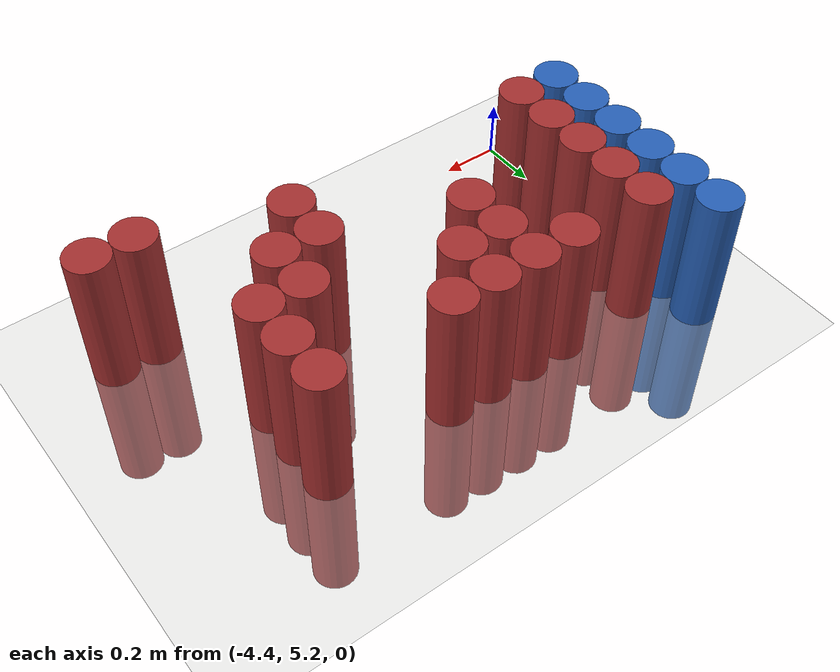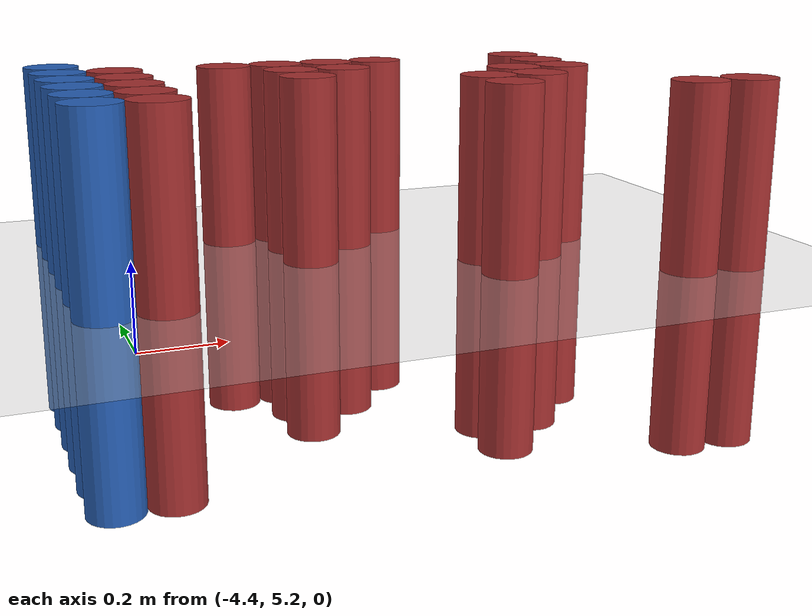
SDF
<sdf version="1.6">
 <world name="default">
  <model name="ground_plane">
   <static>1</static>
   <link name="link">
    <collision name="collision">
     <geometry><plane><normal>0 0 1</normal><size>100 100</size></plane></geometry>
     <surface><friction><ode><mu>100</mu><mu2>50</mu2></ode></friction></surface>
    </collision>
    <visual name="visual">
     <cast_shadows>0</cast_shadows>
     <geometry><plane><normal>0 0 1</normal><size>100 100</size></plane></geometry>
     <material>
      <script><uri>file://media/materials/scripts/gazebo.material</uri><name>Gazebo/Grey</name></script>
     </material>
    </visual>
   </link>
  </model>
  <model name="unit_cylinder_98">
   <static>1</static>
   <pose>-4.425000 5.475000 0.000000 0.000000 0.000000 0.000000</pose>
   <link name="link">
    <inertial>
     <mass>1</mass>
     <inertia><ixx>0.145833</ixx><ixy>0</ixy><ixz>0</ixz><iyy>0.145833</iyy><iyz>0</iyz><izz>0.125</izz></inertia>
    </inertial>
    <collision name="collision">
     <geometry><cylinder><radius>0.075000</radius><length>1</length></cylinder></geometry>
    </collision>
    <visual name="visual">
     <geometry><cylinder><radius>0.075000</radius><length>1</length></cylinder></geometry>
     <material>
      <ambient>0.152000 0.379000 0.720000 1</ambient>
      <diffuse>0.152000 0.379000 0.720000 1</diffuse>
     </material>
     <material>
      <script><name>Gazebo/Grey</name><uri>file://media/materials/scripts/gazebo.material</uri></script>
     </material>
    </visual>
   </link>
  </model>
  <model name="unit_cylinder_99">
   <static>1</static>
   <pose>-4.425000 5.625000 0.000000 0.000000 0.000000 0.000000</pose>
   <link name="link">
    <inertial>
     <mass>1</mass>
     <inertia><ixx>0.145833</ixx><ixy>0</ixy><ixz>0</ixz><iyy>0.145833</iyy><iyz>0</iyz><izz>0.125</izz></inertia>
    </inertial>
    <collision name="collision">
     <geometry><cylinder><radius>0.075000</radius><length>1</length></cylinder></geometry>
    </collision>
    <visual name="visual">
     <geometry><cylinder><radius>0.075000</radius><length>1</length></cylinder></geometry>
     <material>
      <ambient>0.152000 0.379000 0.720000 1</ambient>
      <diffuse>0.152000 0.379000 0.720000 1</diffuse>
     </material>
     <material>
      <script><name>Gazebo/Grey</name><uri>file://media/materials/scripts/gazebo.material</uri></script>
     </material>
    </visual>
   </link>
  </model>
  <model name="unit_cylinder_100">
   <static>1</static>
   <pose>-4.425000 5.775000 0.000000 0.000000 0.000000 0.000000</pose>
   <link name="link">
    <inertial>
     <mass>1</mass>
     <inertia><ixx>0.145833</ixx><ixy>0</ixy><ixz>0</ixz><iyy>0.145833</iyy><iyz>0</iyz><izz>0.125</izz></inertia>
    </inertial>
    <collision name="collision">
     <geometry><cylinder><radius>0.075000</radius><length>1</length></cylinder></geometry>
    </collision>
    <visual name="visual">
     <geometry><cylinder><radius>0.075000</radius><length>1</length></cylinder></geometry>
     <material>
      <ambient>0.152000 0.379000 0.720000 1</ambient>
      <diffuse>0.152000 0.379000 0.720000 1</diffuse>
     </material>
     <material>
      <script><name>Gazebo/Grey</name><uri>file://media/materials/scripts/gazebo.material</uri></script>
     </material>
    </visual>
   </link>
  </model>
  <model name="unit_cylinder_101">
   <static>1</static>
   <pose>-4.425000 5.925000 0.000000 0.000000 0.000000 0.000000</pose>
   <link name="link">
    <inertial>
     <mass>1</mass>
     <inertia><ixx>0.145833</ixx><ixy>0</ixy><ixz>0</ixz><iyy>0.145833</iyy><iyz>0</iyz><izz>0.125</izz></inertia>
    </inertial>
    <collision name="collision">
     <geometry><cylinder><radius>0.075000</radius><length>1</length></cylinder></geometry>
    </collision>
    <visual name="visual">
     <geometry><cylinder><radius>0.075000</radius><length>1</length></cylinder></geometry>
     <material>
      <ambient>0.152000 0.379000 0.720000 1</ambient>
      <diffuse>0.152000 0.379000 0.720000 1</diffuse>
     </material>
     <material>
      <script><name>Gazebo/Grey</name><uri>file://media/materials/scripts/gazebo.material</uri></script>
     </material>
    </visual>
   </link>
  </model>
  <model name="unit_cylinder_102">
   <static>1</static>
   <pose>-4.425000 6.075000 0.000000 0.000000 0.000000 0.000000</pose>
   <link name="link">
    <inertial>
     <mass>1</mass>
     <inertia><ixx>0.145833</ixx><ixy>0</ixy><ixz>0</ixz><iyy>0.145833</iyy><iyz>0</iyz><izz>0.125</izz></inertia>
    </inertial>
    <collision name="collision">
     <geometry><cylinder><radius>0.075000</radius><length>1</length></cylinder></geometry>
    </collision>
    <visual name="visual">
     <geometry><cylinder><radius>0.075000</radius><length>1</length></cylinder></geometry>
     <material>
      <ambient>0.152000 0.379000 0.720000 1</ambient>
      <diffuse>0.152000 0.379000 0.720000 1</diffuse>
     </material>
     <material>
      <script><name>Gazebo/Grey</name><uri>file://media/materials/scripts/gazebo.material</uri></script>
     </material>
    </visual>
   </link>
  </model>
  <model name="unit_cylinder_103">
   <static>1</static>
   <pose>-4.425000 6.225000 0.000000 0.000000 0.000000 0.000000</pose>
   <link name="link">
    <inertial>
     <mass>1</mass>
     <inertia><ixx>0.145833</ixx><ixy>0</ixy><ixz>0</ixz><iyy>0.145833</iyy><iyz>0</iyz><izz>0.125</izz></inertia>
    </inertial>
    <collision name="collision">
     <geometry><cylinder><radius>0.075000</radius><length>1</length></cylinder></geometry>
    </collision>
    <visual name="visual">
     <geometry><cylinder><radius>0.075000</radius><length>1</length></cylinder></geometry>
     <material>
      <ambient>0.152000 0.379000 0.720000 1</ambient>
      <diffuse>0.152000 0.379000 0.720000 1</diffuse>
     </material>
     <material>
      <script><name>Gazebo/Grey</name><uri>file://media/materials/scripts/gazebo.material</uri></script>
     </material>
    </visual>
   </link>
  </model>
  <model name="unit_cylinder_127">
   <static>1</static>
   <pose>-4.275000 5.475000 0.000000 0.000000 0.000000 0.000000</pose>
   <link name="link">
    <inertial>
     <mass>1</mass>
     <inertia><ixx>0.145833</ixx><ixy>0</ixy><ixz>0</ixz><iyy>0.145833</iyy><iyz>0</iyz><izz>0.125</izz></inertia>
    </inertial>
    <collision name="collision">
     <geometry><cylinder><radius>0.075000</radius><length>1</length></cylinder></geometry>
    </collision>
    <visual name="visual">
     <geometry><cylinder><radius>0.075000</radius><length>1</length></cylinder></geometry>
     <material>
      <ambient>0.648000 0.192000 0.192000 1</ambient>
      <diffuse>0.648000 0.192000 0.192000 1</diffuse>
     </material>
     <material>
      <script><name>Gazebo/Grey</name><uri>file://media/materials/scripts/gazebo.material</uri></script>
     </material>
    </visual>
   </link>
  </model>
  <model name="unit_cylinder_128">
   <static>1</static>
   <pose>-4.275000 5.625000 0.000000 0.000000 0.000000 0.000000</pose>
   <link name="link">
    <inertial>
     <mass>1</mass>
     <inertia><ixx>0.145833</ixx><ixy>0</ixy><ixz>0</ixz><iyy>0.145833</iyy><iyz>0</iyz><izz>0.125</izz></inertia>
    </inertial>
    <collision name="collision">
     <geometry><cylinder><radius>0.075000</radius><length>1</length></cylinder></geometry>
    </collision>
    <visual name="visual">
     <geometry><cylinder><radius>0.075000</radius><length>1</length></cylinder></geometry>
     <material>
      <ambient>0.648000 0.192000 0.192000 1</ambient>
      <diffuse>0.648000 0.192000 0.192000 1</diffuse>
     </material>
     <material>
      <script><name>Gazebo/Grey</name><uri>file://media/materials/scripts/gazebo.material</uri></script>
     </material>
    </visual>
   </link>
  </model>
  <model name="unit_cylinder_129">
   <static>1</static>
   <pose>-4.275000 5.775000 0.000000 0.000000 0.000000 0.000000</pose>
   <link name="link">
    <inertial>
     <mass>1</mass>
     <inertia><ixx>0.145833</ixx><ixy>0</ixy><ixz>0</ixz><iyy>0.145833</iyy><iyz>0</iyz><izz>0.125</izz></inertia>
    </inertial>
    <collision name="collision">
     <geometry><cylinder><radius>0.075000</radius><length>1</length></cylinder></geometry>
    </collision>
    <visual name="visual">
     <geometry><cylinder><radius>0.075000</radius><length>1</length></cylinder></geometry>
     <material>
      <ambient>0.648000 0.192000 0.192000 1</ambient>
      <diffuse>0.648000 0.192000 0.192000 1</diffuse>
     </material>
     <material>
      <script><name>Gazebo/Grey</name><uri>file://media/materials/scripts/gazebo.material</uri></script>
     </material>
    </visual>
   </link>
  </model>
  <model name="unit_cylinder_130">
   <static>1</static>
   <pose>-4.275000 5.925000 0.000000 0.000000 0.000000 0.000000</pose>
   <link name="link">
    <inertial>
     <mass>1</mass>
     <inertia><ixx>0.145833</ixx><ixy>0</ixy><ixz>0</ixz><iyy>0.145833</iyy><iyz>0</iyz><izz>0.125</izz></inertia>
    </inertial>
    <collision name="collision">
     <geometry><cylinder><radius>0.075000</radius><length>1</length></cylinder></geometry>
    </collision>
    <visual name="visual">
     <geometry><cylinder><radius>0.075000</radius><length>1</length></cylinder></geometry>
     <material>
      <ambient>0.648000 0.192000 0.192000 1</ambient>
      <diffuse>0.648000 0.192000 0.192000 1</diffuse>
     </material>
     <material>
      <script><name>Gazebo/Grey</name><uri>file://media/materials/scripts/gazebo.material</uri></script>
     </material>
    </visual>
   </link>
  </model>
  <model name="unit_cylinder_131">
   <static>1</static>
   <pose>-4.275000 6.075000 0.000000 0.000000 0.000000 0.000000</pose>
   <link name="link">
    <inertial>
     <mass>1</mass>
     <inertia><ixx>0.145833</ixx><ixy>0</ixy><ixz>0</ixz><iyy>0.145833</iyy><iyz>0</iyz><izz>0.125</izz></inertia>
    </inertial>
    <collision name="collision">
     <geometry><cylinder><radius>0.075000</radius><length>1</length></cylinder></geometry>
    </collision>
    <visual name="visual">
     <geometry><cylinder><radius>0.075000</radius><length>1</length></cylinder></geometry>
     <material>
      <ambient>0.648000 0.192000 0.192000 1</ambient>
      <diffuse>0.648000 0.192000 0.192000 1</diffuse>
     </material>
     <material>
      <script><name>Gazebo/Grey</name><uri>file://media/materials/scripts/gazebo.material</uri></script>
     </material>
    </visual>
   </link>
  </model>
  <model name="unit_cylinder_152">
   <static>1</static>
   <pose>-3.975000 6.075000 0.000000 0.000000 0.000000 0.000000</pose>
   <link name="link">
    <inertial>
     <mass>1</mass>
     <inertia><ixx>0.145833</ixx><ixy>0</ixy><ixz>0</ixz><iyy>0.145833</iyy><iyz>0</iyz><izz>0.125</izz></inertia>
    </inertial>
    <collision name="collision">
     <geometry><cylinder><radius>0.075000</radius><length>1</length></cylinder></geometry>
    </collision>
    <visual name="visual">
     <geometry><cylinder><radius>0.075000</radius><length>1</length></cylinder></geometry>
     <material>
      <ambient>0.648000 0.192000 0.192000 1</ambient>
      <diffuse>0.648000 0.192000 0.192000 1</diffuse>
     </material>
     <material>
      <script><name>Gazebo/Grey</name><uri>file://media/materials/scripts/gazebo.material</uri></script>
     </material>
    </visual>
   </link>
  </model>
  <model name="unit_cylinder_158">
   <static>1</static>
   <pose>-3.825000 5.775000 0.000000 0.000000 0.000000 0.000000</pose>
   <link name="link">
    <inertial>
     <mass>1</mass>
     <inertia><ixx>0.145833</ixx><ixy>0</ixy><ixz>0</ixz><iyy>0.145833</iyy><iyz>0</iyz><izz>0.125</izz></inertia>
    </inertial>
    <collision name="collision">
     <geometry><cylinder><radius>0.075000</radius><length>1</length></cylinder></geometry>
    </collision>
    <visual name="visual">
     <geometry><cylinder><radius>0.075000</radius><length>1</length></cylinder></geometry>
     <material>
      <ambient>0.648000 0.192000 0.192000 1</ambient>
      <diffuse>0.648000 0.192000 0.192000 1</diffuse>
     </material>
     <material>
      <script><name>Gazebo/Grey</name><uri>file://media/materials/scripts/gazebo.material</uri></script>
     </material>
    </visual>
   </link>
  </model>
  <model name="unit_cylinder_159">
   <static>1</static>
   <pose>-3.825000 5.925000 0.000000 0.000000 0.000000 0.000000</pose>
   <link name="link">
    <inertial>
     <mass>1</mass>
     <inertia><ixx>0.145833</ixx><ixy>0</ixy><ixz>0</ixz><iyy>0.145833</iyy><iyz>0</iyz><izz>0.125</izz></inertia>
    </inertial>
    <collision name="collision">
     <geometry><cylinder><radius>0.075000</radius><length>1</length></cylinder></geometry>
    </collision>
    <visual name="visual">
     <geometry><cylinder><radius>0.075000</radius><length>1</length></cylinder></geometry>
     <material>
      <ambient>0.648000 0.192000 0.192000 1</ambient>
      <diffuse>0.648000 0.192000 0.192000 1</diffuse>
     </material>
     <material>
      <script><name>Gazebo/Grey</name><uri>file://media/materials/scripts/gazebo.material</uri></script>
     </material>
    </visual>
   </link>
  </model>
  <model name="unit_cylinder_160">
   <static>1</static>
   <pose>-3.825000 6.075000 0.000000 0.000000 0.000000 0.000000</pose>
   <link name="link">
    <inertial>
     <mass>1</mass>
     <inertia><ixx>0.145833</ixx><ixy>0</ixy><ixz>0</ixz><iyy>0.145833</iyy><iyz>0</iyz><izz>0.125</izz></inertia>
    </inertial>
    <collision name="collision">
     <geometry><cylinder><radius>0.075000</radius><length>1</length></cylinder></geometry>
    </collision>
    <visual name="visual">
     <geometry><cylinder><radius>0.075000</radius><length>1</length></cylinder></geometry>
     <material>
      <ambient>0.648000 0.192000 0.192000 1</ambient>
      <diffuse>0.648000 0.192000 0.192000 1</diffuse>
     </material>
     <material>
      <script><name>Gazebo/Grey</name><uri>file://media/materials/scripts/gazebo.material</uri></script>
     </material>
    </visual>
   </link>
  </model>
  <model name="unit_cylinder_164">
   <static>1</static>
   <pose>-3.675000 5.925000 0.000000 0.000000 0.000000 0.000000</pose>
   <link name="link">
    <inertial>
     <mass>1</mass>
     <inertia><ixx>0.145833</ixx><ixy>0</ixy><ixz>0</ixz><iyy>0.145833</iyy><iyz>0</iyz><izz>0.125</izz></inertia>
    </inertial>
    <collision name="collision">
     <geometry><cylinder><radius>0.075000</radius><length>1</length></cylinder></geometry>
    </collision>
    <visual name="visual">
     <geometry><cylinder><radius>0.075000</radius><length>1</length></cylinder></geometry>
     <material>
      <ambient>0.648000 0.192000 0.192000 1</ambient>
      <diffuse>0.648000 0.192000 0.192000 1</diffuse>
     </material>
     <material>
      <script><name>Gazebo/Grey</name><uri>file://media/materials/scripts/gazebo.material</uri></script>
     </material>
    </visual>
   </link>
  </model>
  <model name="unit_cylinder_165">
   <static>1</static>
   <pose>-3.675000 6.075000 0.000000 0.000000 0.000000 0.000000</pose>
   <link name="link">
    <inertial>
     <mass>1</mass>
     <inertia><ixx>0.145833</ixx><ixy>0</ixy><ixz>0</ixz><iyy>0.145833</iyy><iyz>0</iyz><izz>0.125</izz></inertia>
    </inertial>
    <collision name="collision">
     <geometry><cylinder><radius>0.075000</radius><length>1</length></cylinder></geometry>
    </collision>
    <visual name="visual">
     <geometry><cylinder><radius>0.075000</radius><length>1</length></cylinder></geometry>
     <material>
      <ambient>0.648000 0.192000 0.192000 1</ambient>
      <diffuse>0.648000 0.192000 0.192000 1</diffuse>
     </material>
     <material>
      <script><name>Gazebo/Grey</name><uri>file://media/materials/scripts/gazebo.material</uri></script>
     </material>
    </visual>
   </link>
  </model>
  <model name="unit_cylinder_171">
   <static>1</static>
   <pose>-3.525000 6.075000 0.000000 0.000000 0.000000 0.000000</pose>
   <link name="link">
    <inertial>
     <mass>1</mass>
     <inertia><ixx>0.145833</ixx><ixy>0</ixy><ixz>0</ixz><iyy>0.145833</iyy><iyz>0</iyz><izz>0.125</izz></inertia>
    </inertial>
    <collision name="collision">
     <geometry><cylinder><radius>0.075000</radius><length>1</length></cylinder></geometry>
    </collision>
    <visual name="visual">
     <geometry><cylinder><radius>0.075000</radius><length>1</length></cylinder></geometry>
     <material>
      <ambient>0.648000 0.192000 0.192000 1</ambient>
      <diffuse>0.648000 0.192000 0.192000 1</diffuse>
     </material>
     <material>
      <script><name>Gazebo/Grey</name><uri>file://media/materials/scripts/gazebo.material</uri></script>
     </material>
    </visual>
   </link>
  </model>
  <model name="unit_cylinder_178">
   <static>1</static>
   <pose>-3.375000 5.475000 0.000000 0.000000 0.000000 0.000000</pose>
   <link name="link">
    <inertial>
     <mass>1</mass>
     <inertia><ixx>0.145833</ixx><ixy>0</ixy><ixz>0</ixz><iyy>0.145833</iyy><iyz>0</iyz><izz>0.125</izz></inertia>
    </inertial>
    <collision name="collision">
     <geometry><cylinder><radius>0.075000</radius><length>1</length></cylinder></geometry>
    </collision>
    <visual name="visual">
     <geometry><cylinder><radius>0.075000</radius><length>1</length></cylinder></geometry>
     <material>
      <ambient>0.648000 0.192000 0.192000 1</ambient>
      <diffuse>0.648000 0.192000 0.192000 1</diffuse>
     </material>
     <material>
      <script><name>Gazebo/Grey</name><uri>file://media/materials/scripts/gazebo.material</uri></script>
     </material>
    </visual>
   </link>
  </model>
  <model name="unit_cylinder_179">
   <static>1</static>
   <pose>-3.375000 5.625000 0.000000 0.000000 0.000000 0.000000</pose>
   <link name="link">
    <inertial>
     <mass>1</mass>
     <inertia><ixx>0.145833</ixx><ixy>0</ixy><ixz>0</ixz><iyy>0.145833</iyy><iyz>0</iyz><izz>0.125</izz></inertia>
    </inertial>
    <collision name="collision">
     <geometry><cylinder><radius>0.075000</radius><length>1</length></cylinder></geometry>
    </collision>
    <visual name="visual">
     <geometry><cylinder><radius>0.075000</radius><length>1</length></cylinder></geometry>
     <material>
      <ambient>0.648000 0.192000 0.192000 1</ambient>
      <diffuse>0.648000 0.192000 0.192000 1</diffuse>
     </material>
     <material>
      <script><name>Gazebo/Grey</name><uri>file://media/materials/scripts/gazebo.material</uri></script>
     </material>
    </visual>
   </link>
  </model>
  <model name="unit_cylinder_190">
   <static>1</static>
   <pose>-3.225000 5.625000 0.000000 0.000000 0.000000 0.000000</pose>
   <link name="link">
    <inertial>
     <mass>1</mass>
     <inertia><ixx>0.145833</ixx><ixy>0</ixy><ixz>0</ixz><iyy>0.145833</iyy><iyz>0</iyz><izz>0.125</izz></inertia>
    </inertial>
    <collision name="collision">
     <geometry><cylinder><radius>0.075000</radius><length>1</length></cylinder></geometry>
    </collision>
    <visual name="visual">
     <geometry><cylinder><radius>0.075000</radius><length>1</length></cylinder></geometry>
     <material>
      <ambient>0.648000 0.192000 0.192000 1</ambient>
      <diffuse>0.648000 0.192000 0.192000 1</diffuse>
     </material>
     <material>
      <script><name>Gazebo/Grey</name><uri>file://media/materials/scripts/gazebo.material</uri></script>
     </material>
    </visual>
   </link>
  </model>
  <model name="unit_cylinder_191">
   <static>1</static>
   <pose>-3.225000 5.775000 0.000000 0.000000 0.000000 0.000000</pose>
   <link name="link">
    <inertial>
     <mass>1</mass>
     <inertia><ixx>0.145833</ixx><ixy>0</ixy><ixz>0</ixz><iyy>0.145833</iyy><iyz>0</iyz><izz>0.125</izz></inertia>
    </inertial>
    <collision name="collision">
     <geometry><cylinder><radius>0.075000</radius><length>1</length></cylinder></geometry>
    </collision>
    <visual name="visual">
     <geometry><cylinder><radius>0.075000</radius><length>1</length></cylinder></geometry>
     <material>
      <ambient>0.648000 0.192000 0.192000 1</ambient>
      <diffuse>0.648000 0.192000 0.192000 1</diffuse>
     </material>
     <material>
      <script><name>Gazebo/Grey</name><uri>file://media/materials/scripts/gazebo.material</uri></script>
     </material>
    </visual>
   </link>
  </model>
  <model name="unit_cylinder_199">
   <static>1</static>
   <pose>-3.075000 5.775000 0.000000 0.000000 0.000000 0.000000</pose>
   <link name="link">
    <inertial>
     <mass>1</mass>
     <inertia><ixx>0.145833</ixx><ixy>0</ixy><ixz>0</ixz><iyy>0.145833</iyy><iyz>0</iyz><izz>0.125</izz></inertia>
    </inertial>
    <collision name="collision">
     <geometry><cylinder><radius>0.075000</radius><length>1</length></cylinder></geometry>
    </collision>
    <visual name="visual">
     <geometry><cylinder><radius>0.075000</radius><length>1</length></cylinder></geometry>
     <material>
      <ambient>0.648000 0.192000 0.192000 1</ambient>
      <diffuse>0.648000 0.192000 0.192000 1</diffuse>
     </material>
     <material>
      <script><name>Gazebo/Grey</name><uri>file://media/materials/scripts/gazebo.material</uri></script>
     </material>
    </visual>
   </link>
  </model>
  <model name="unit_cylinder_200">
   <static>1</static>
   <pose>-3.075000 5.925000 0.000000 0.000000 0.000000 0.000000</pose>
   <link name="link">
    <inertial>
     <mass>1</mass>
     <inertia><ixx>0.145833</ixx><ixy>0</ixy><ixz>0</ixz><iyy>0.145833</iyy><iyz>0</iyz><izz>0.125</izz></inertia>
    </inertial>
    <collision name="collision">
     <geometry><cylinder><radius>0.075000</radius><length>1</length></cylinder></geometry>
    </collision>
    <visual name="visual">
     <geometry><cylinder><radius>0.075000</radius><length>1</length></cylinder></geometry>
     <material>
      <ambient>0.648000 0.192000 0.192000 1</ambient>
      <diffuse>0.648000 0.192000 0.192000 1</diffuse>
     </material>
     <material>
      <script><name>Gazebo/Grey</name><uri>file://media/materials/scripts/gazebo.material</uri></script>
     </material>
    </visual>
   </link>
  </model>
  <model name="unit_cylinder_201">
   <static>1</static>
   <pose>-3.075000 6.075000 0.000000 0.000000 0.000000 0.000000</pose>
   <link name="link">
    <inertial>
     <mass>1</mass>
     <inertia><ixx>0.145833</ixx><ixy>0</ixy><ixz>0</ixz><iyy>0.145833</iyy><iyz>0</iyz><izz>0.125</izz></inertia>
    </inertial>
    <collision name="collision">
     <geometry><cylinder><radius>0.075000</radius><length>1</length></cylinder></geometry>
    </collision>
    <visual name="visual">
     <geometry><cylinder><radius>0.075000</radius><length>1</length></cylinder></geometry>
     <material>
      <ambient>0.648000 0.192000 0.192000 1</ambient>
      <diffuse>0.648000 0.192000 0.192000 1</diffuse>
     </material>
     <material>
      <script><name>Gazebo/Grey</name><uri>file://media/materials/scripts/gazebo.material</uri></script>
     </material>
    </visual>
   </link>
  </model>
  <model name="unit_cylinder_206">
   <static>1</static>
   <pose>-2.925000 5.325000 0.000000 0.000000 0.000000 0.000000</pose>
   <link name="link">
    <inertial>
     <mass>1</mass>
     <inertia><ixx>0.145833</ixx><ixy>0</ixy><ixz>0</ixz><iyy>0.145833</iyy><iyz>0</iyz><izz>0.125</izz></inertia>
    </inertial>
    <collision name="collision">
     <geometry><cylinder><radius>0.075000</radius><length>1</length></cylinder></geometry>
    </collision>
    <visual name="visual">
     <geometry><cylinder><radius>0.075000</radius><length>1</length></cylinder></geometry>
     <material>
      <ambient>0.648000 0.192000 0.192000 1</ambient>
      <diffuse>0.648000 0.192000 0.192000 1</diffuse>
     </material>
     <material>
      <script><name>Gazebo/Grey</name><uri>file://media/materials/scripts/gazebo.material</uri></script>
     </material>
    </visual>
   </link>
  </model>
  <model name="unit_cylinder_210">
   <static>1</static>
   <pose>-2.775000 5.325000 0.000000 0.000000 0.000000 0.000000</pose>
   <link name="link">
    <inertial>
     <mass>1</mass>
     <inertia><ixx>0.145833</ixx><ixy>0</ixy><ixz>0</ixz><iyy>0.145833</iyy><iyz>0</iyz><izz>0.125</izz></inertia>
    </inertial>
    <collision name="collision">
     <geometry><cylinder><radius>0.075000</radius><length>1</length></cylinder></geometry>
    </collision>
    <visual name="visual">
     <geometry><cylinder><radius>0.075000</radius><length>1</length></cylinder></geometry>
     <material>
      <ambient>0.648000 0.192000 0.192000 1</ambient>
      <diffuse>0.648000 0.192000 0.192000 1</diffuse>
     </material>
     <material>
      <script><name>Gazebo/Grey</name><uri>file://media/materials/scripts/gazebo.material</uri></script>
     </material>
    </visual>
   </link>
  </model>
 </world>
</sdf>
